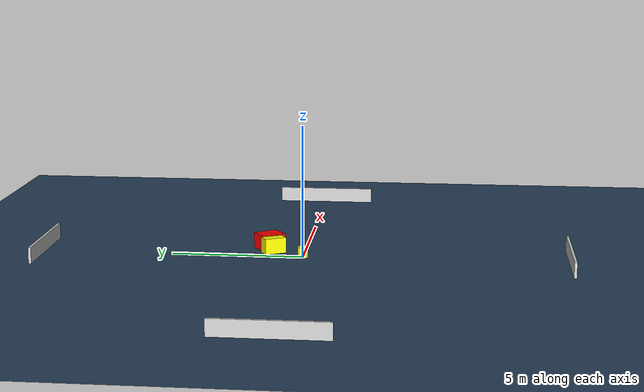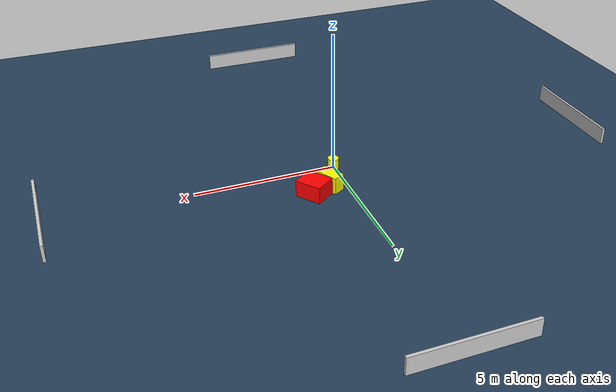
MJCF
<?xml version="1.0" ?>
<mujoco model="generated_environment">
  <option timestep="0.01" integrator="RK4" cone="elliptic"/>
  <default>
    <geom density="1"/>
  </default>
  <asset>
    <texture builtin="gradient" height="3072" name="skybox" rgb1="0.3 0.5 0.7" rgb2="0 0 0" type="skybox" width="512"/>
    <texture builtin="checker" height="300" name="groundplane" rgb1="0.2 0.3 0.4" rgb2="0.1 0.2 0.3" type="2d" width="300"/>
    <material name="groundplane" reflectance="0.2" texrepeat="5 5" texture="groundplane"/>
  </asset>
  <worldbody>
    <light dir="0 0 -1" directional="true" pos="0 0 1.5"/>
    <geom condim="3" friction="0.5 0.005 0.001" material="groundplane" name="floor" pos="0 0 0" size="0 0 0.05" type="plane"/>
    <body name="walls">
      <geom name="wall_1" condim="4" pos="-10.0 0.0 0.3" rgba="0.800000011920929 0.800000011920929 0.800000011920929 1.0" size="0.05 2.0 0.3" type="box"/>
      <geom name="wall_2" condim="4" pos="10.0 0.0 0.3" rgba="0.800000011920929 0.800000011920929 0.800000011920929 1.0" size="0.05 2.0 0.3" type="box"/>
      <geom name="wall_3" condim="4" pos="0.0 -10.0 0.3" rgba="0.800000011920929 0.800000011920929 0.800000011920929 1.0" size="2.0 0.05 0.3" type="box"/>
      <geom name="wall_4" condim="4" pos="0.0 10.0 0.3" rgba="0.800000011920929 0.800000011920929 0.800000011920929 1.0" size="2.0 0.05 0.3" type="box"/>
    </body>
    <body name="robot">
      <joint name="joint_x" type="slide" pos="0 0 0" axis="1 0 0"/>
      <joint name="joint_y" type="slide" pos="0 0 0" axis="0 1 0"/>
      <geom name="robot" type="cylinder" pos="0.0 0.0 0.2" size="0.2 0.2 0.0" mass="5.0" friction="1.0 0.005 0.0001" condim="4" rgba="1.0 1.0 0.0 1.0"/>
    </body>
    <body name="obstacle_1_movable">
      <geom name="obstacle_1_movable" condim="4" pos="0.5850847081382813 1.1915517795928037 0.3" euler="0 0 209.1692811911585" friction="0.0 0.005 0.001" rgba="1.0 1.0 0.0 1.0" size="0.21782604191859894 0.4224907328442979 0.3" type="box" mass="0.1"/>
      <joint type="free"/>
    </body>
    <body name="obstacle_2_static">
      <geom name="obstacle_2_static" condim="4" pos="1.239602877555538 1.4162554334853223 0.3" euler="0 0 216.81612434922377" friction="0.0 0.005 0.001" rgba="1.0 0.0 0.0 1.0" size="0.3982884610000498 0.47148359381121063 0.3" type="box"/>
    </body>
  </worldbody>
  <actuator>
    <motor name="actuator_x" joint="joint_x" gear="1" ctrlrange="-1 1"/>
    <motor name="actuator_y" joint="joint_y" gear="1" ctrlrange="-1 1"/>
  </actuator>
</mujoco>
